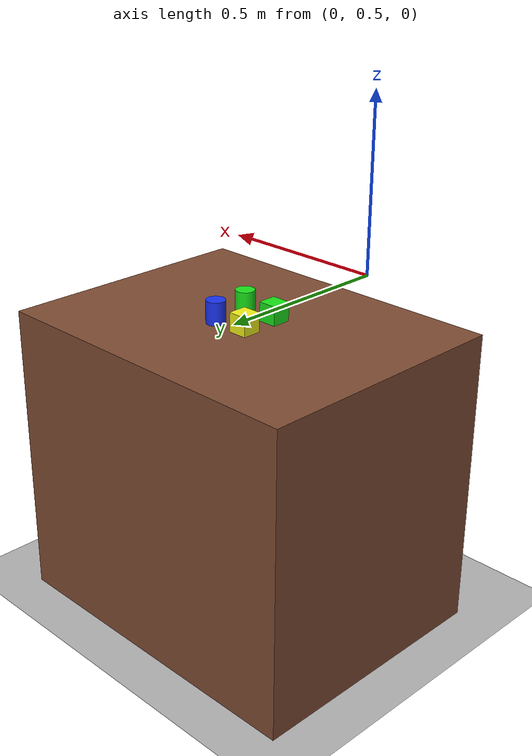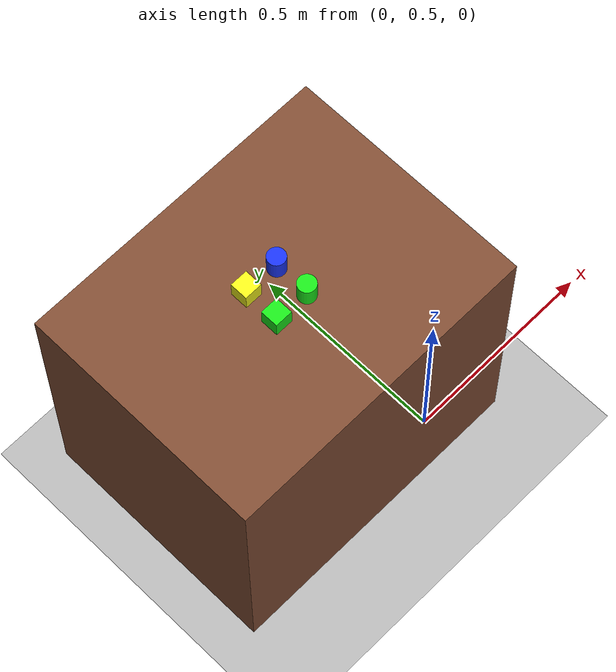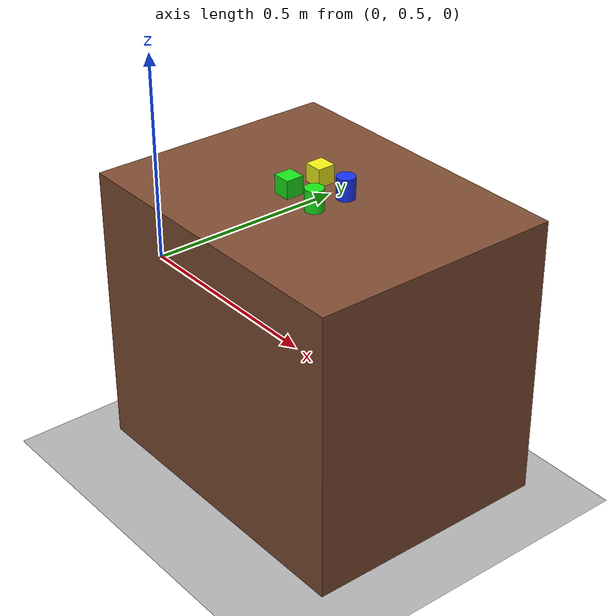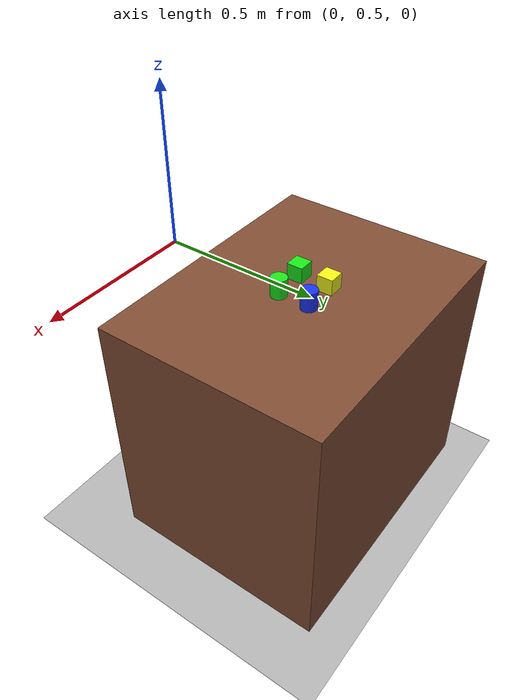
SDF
<?xml version="1.0" ?>
<sdf version="1.7">
  <world name="table_objects_world">
    <light name="sun" type="directional">
      <cast_shadows>true</cast_shadows>
      <pose>0 0 10 0 0 0</pose>
      <diffuse>1 1 1 1</diffuse>
      <specular>0.2 0.2 0.2 1</specular>
      <direction>-0.5 0.1 -1</direction>
    </light>

    <model name="ground_plane">
      <static>true</static>
      <pose>0 0 -0.8 0 0 0</pose>
      <link name="link">
        <collision name="collision">
          <geometry>
            <plane>
              <normal>0 0 1</normal>
              <size>50 50</size>
            </plane>
          </geometry>
        </collision>
        <visual name="visual">
          <geometry>
            <plane>
              <normal>0 0 1</normal>
              <size>50 50</size>
            </plane>
          </geometry>
          <material>
            <diffuse>0.7 0.7 0.7 1</diffuse>
            <specular>0.1 0.1 0.1 1</specular>
          </material>
        </visual>
      </link>
    </model>

    <model name="table">
      <static>true</static>
      <pose>-0.0077 0.9695 -0.40 0 0 0</pose>
      <link name="link">
        <collision name="collision">
          <geometry>
            <box><size>0.9 0.7 0.8</size></box>
          </geometry>
        </collision>
        <visual name="visual">
          <geometry>
            <box><size>0.9 0.7 0.8</size></box>
          </geometry>
          <material>
            <diffuse>0.5 0.3 0.2 1</diffuse>
            <specular>0.1 0.1 0.1 1</specular>
          </material>
        </visual>
      </link>
    </model>

    <model name="green_cube">
      <static>true</static>
      <pose>-0.0577 0.9195 0.03 0 0 0</pose>
      <link name="link">
        <visual name="visual">
          <geometry><box><size>0.05 0.05 0.05</size></box></geometry>
          <material><diffuse>0.1 0.9 0.1 1</diffuse></material>
        </visual>
        <collision name="collision">
          <geometry><box><size>0.05 0.05 0.05</size></box></geometry>
        </collision>
      </link>
    </model>

    <model name="green_cylinder">
      <static>true</static>
      <pose>0.0423 0.9195 0.03 0 0 0</pose>
      <link name="link">
        <visual name="visual">
          <geometry><cylinder><radius>0.025</radius><length>0.06</length></cylinder></geometry>
          <material><diffuse>0.1 0.9 0.1 1</diffuse></material>
        </visual>
        <collision name="collision">
          <geometry><cylinder><radius>0.025</radius><length>0.06</length></cylinder></geometry>
        </collision>
      </link>
    </model>

    <model name="yellow_cube">
      <static>true</static>
      <pose>-0.0577 1.0195 0.03 0 0 0</pose>
      <link name="link">
        <visual name="visual">
          <geometry><box><size>0.05 0.05 0.05</size></box></geometry>
          <material><diffuse>0.95 0.95 0.1 1</diffuse></material>
        </visual>
        <collision name="collision">
          <geometry><box><size>0.05 0.05 0.05</size></box></geometry>
        </collision>
      </link>
    </model>

    <model name="blue_cylinder">
      <static>true</static>
      <pose>0.0423 1.0195 0.03 0 0 0</pose>
      <link name="link">
        <visual name="visual">
          <geometry><cylinder><radius>0.025</radius><length>0.06</length></cylinder></geometry>
          <material><diffuse>0.1 0.2 0.95 1</diffuse></material>
        </visual>
        <collision name="collision">
          <geometry><cylinder><radius>0.025</radius><length>0.06</length></cylinder></geometry>
        </collision>
      </link>
    </model>

  </world>
</sdf>
